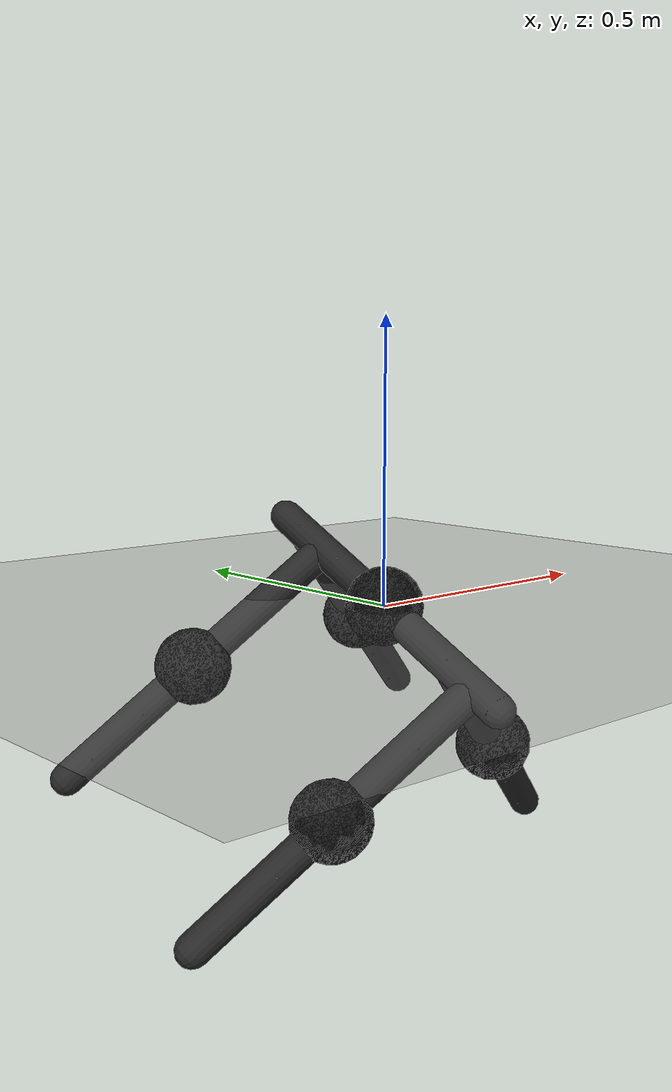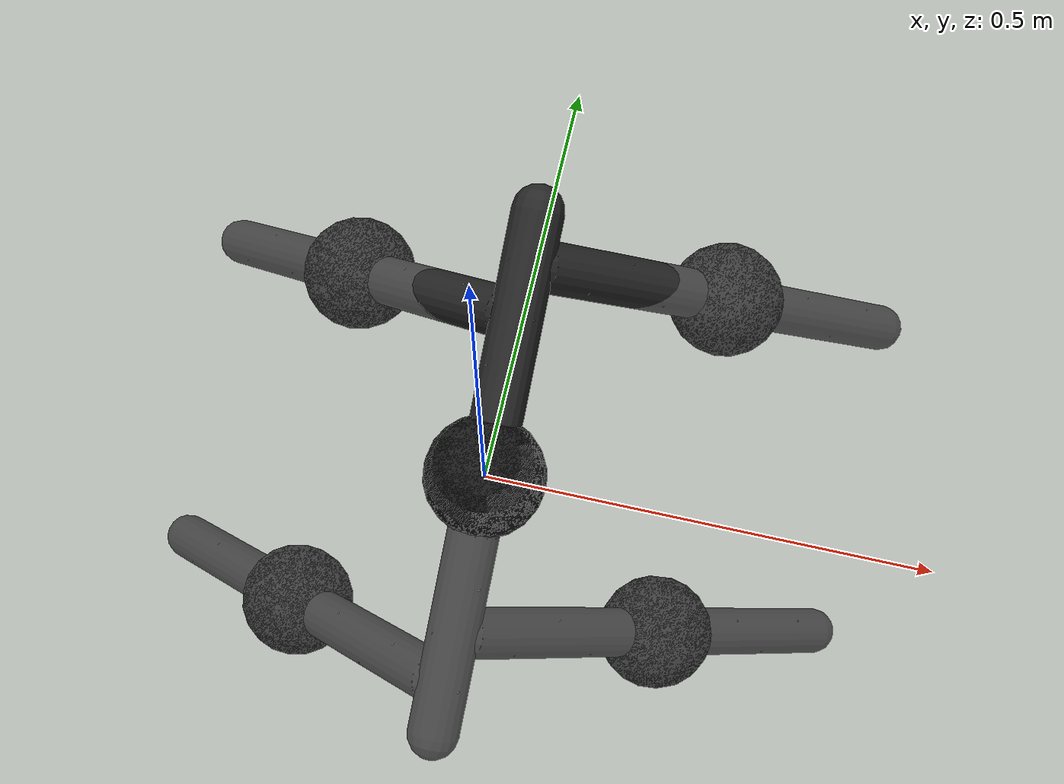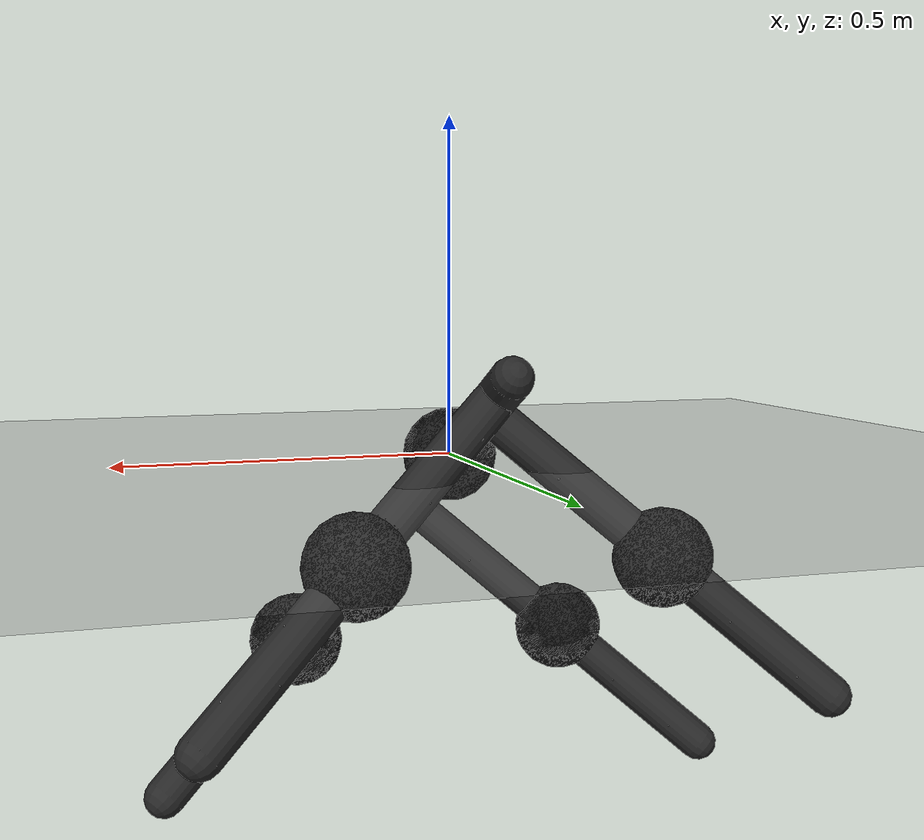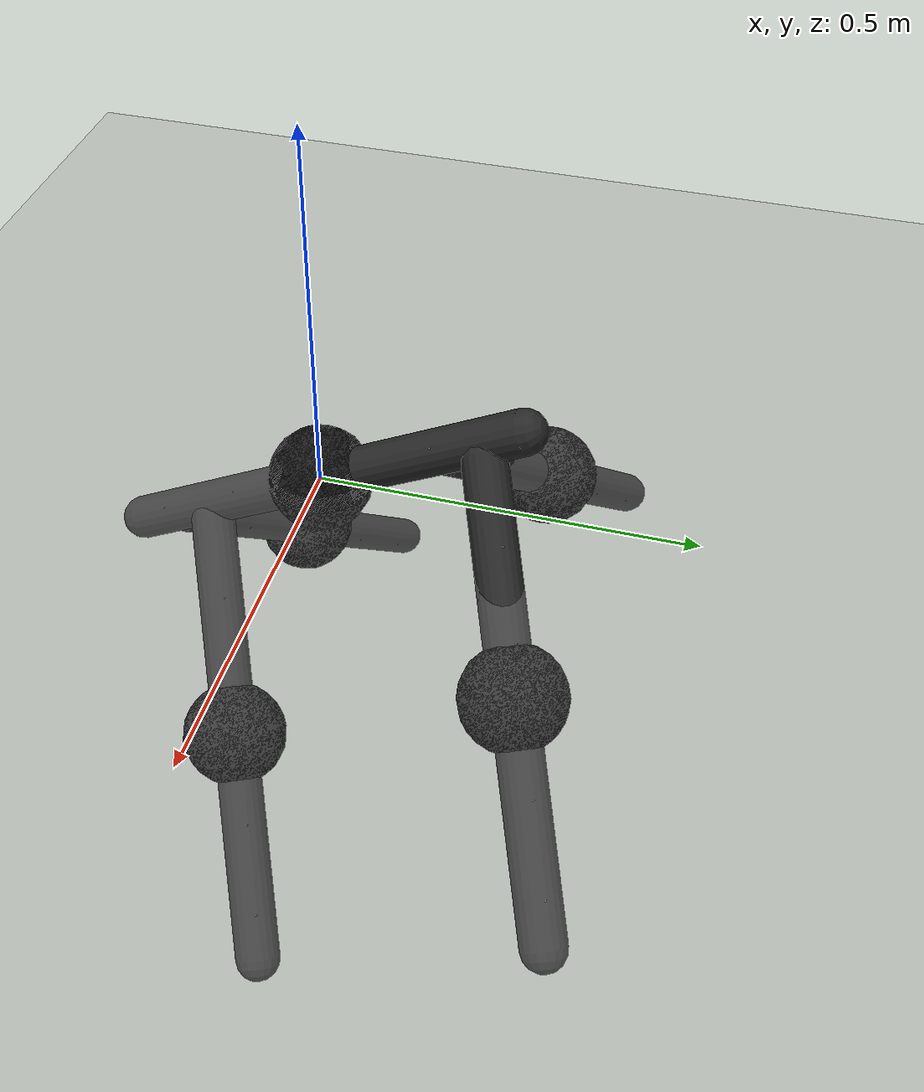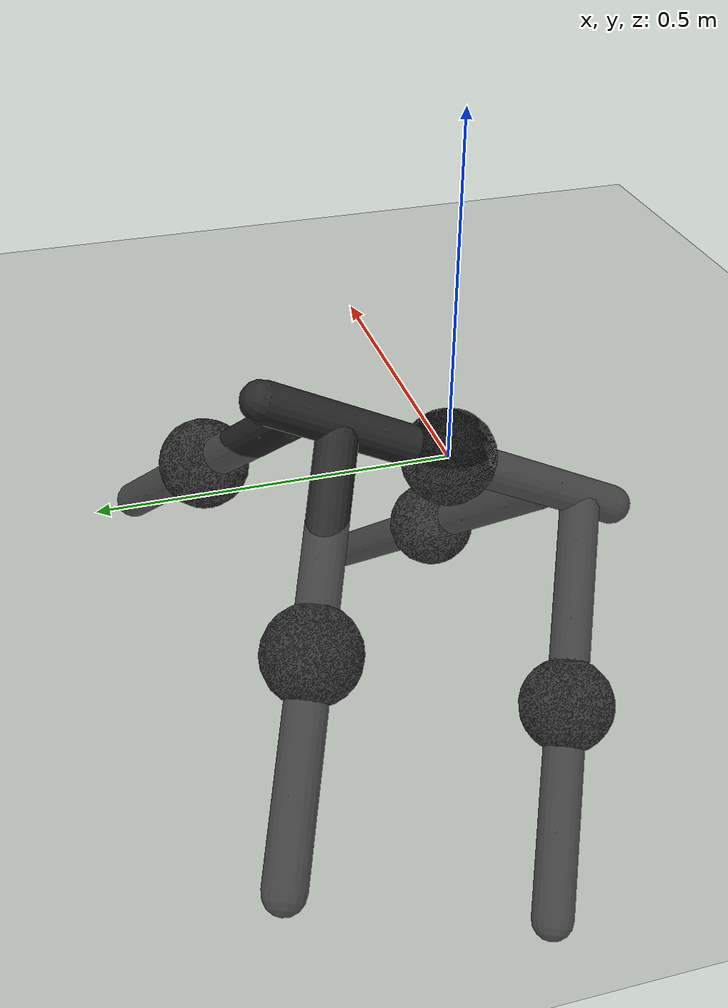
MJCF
<mujoco model="modular_legs">
  <compiler angle="degree" coordinate="local" inertiafromgeom="true"/>
  <option integrator="RK4" timestep="0.004">
    <flag contact="enable" gravity="enable"/>
  </option>
  <size njmax="500" nconmax="100"/>
  <visual>
    <map znear="0.01" shadowclip="0.5"/>
    <headlight ambient="0.6 0.6 0.6" diffuse="0.3 0.3 0.3" specular="0 0 0"/>
    <quality shadowsize="26384"/>
  </visual>
  <default>
    <joint armature="1" damping="1" limited="true"/>
    <geom conaffinity="0" condim="3" density="5.0" friction="1 0.5 0.5" margin="0.01"/>
  </default>
  <asset>
    <material name="matplane" specular="0" shininess="0.01" reflectance="0.1" texture="texplane" texrepeat="1 1" texuniform="true"/>
    <material name="hfield" texture="texplane" texrepeat="1 1" texuniform="true" reflectance="0.1"/>
    <material name="boundary" texture="boundary" texrepeat="1 1" texuniform="true" reflectance=".5" rgba="1 1 1 1"/>
    <material name="metallic" specular="1" shininess="0.8" reflectance="0.9" emission="0.1" rgba="0.2 0.2 0.2 1"/>
    <texture type="skybox" builtin="gradient" rgb1="0.8 0.8 0.8" rgb2="0 0 0" width="512" height="512"/>
    <texture name="texplane" type="2d" builtin="checker" rgb1="0.6 0.6 0.6" rgb2="0.5 0.5 0.5" width="512" height="512" mark="cross" markrgb=".8 .8 .8"/>
    <texture name="boundary" type="2d" builtin="flat" rgb1="0.6 0.6 0.7" rgb2="0.6 0.6 0.8" width="300" height="300"/>
    <texture name="hfield" type="2d" builtin="checker" rgb1="0.4 0.4 0.4" rgb2="0.4 0.4 0.4" width="300" height="300" mark="edge" markrgb="0.2 0.2 0.2"/>
  </asset>
  <worldbody>
    <geom name="floor" pos="0 0 0" size="40 40 40" type="plane" material="matplane" conaffinity="1" condim="6" friction="1.0 .0 .0" priority="1" solref="0.03 2" solimp="0.9 0.95 0.001"/>
    <light mode="targetbodycom" target="torso0" pos="3 0 4" cutoff="100" diffuse="1 1 1" specular=".05 .05 .05"/>
    <body name="torso0" pos="0 0 0">
      <freejoint name="root0"/>
      <camera name="follow_camera0" mode="track" pos="0 -2 1" xyaxes="1 0 0 0 1 2"/>
      <body name="l0" pos="0 0 0" quat="1 0 0 0">
        <geom type="sphere" name="left0" size="0.07" rgba="0.1 0.1 0.1 1" mass="0.1153" friction="1.0 .0 .0" priority="2"/>
        <site name="imu_site0" pos="0 0 0" size="0.01" rgba="0 0 1 1"/>
        <body name="passive0" pos="-2.1178690039592308e-17 0.16298792689260236 0.08126279249668042" quat="0.5082835992042238 0.8213771878206866 -0.22008735415789957 0.13619417993275626">
          <geom name="stick0" type="capsule" pos="0.0 0.0 0.0" quat="1 0 0 0" size="0.03 0.118" rgba="0.15 0.15 0.15 1" mass="0.1734" friction="1.0 .0 .0" priority="2"/>
          <site pos="0.0 0.0 0.1121227766016838" quat="0.0 0.0 0.0 1.0" name="passive0_head_0"/>
          <site pos="0.0 0.0 0.1121227766016838" quat="0.0 0.0 0.8660254037844386 0.5000000000000001" name="passive0_head_1"/>
          <site pos="0.0 0.0 0.1121227766016838" quat="0.0 0.0 0.8660254037844387 -0.4999999999999998" name="passive0_head_2"/>
          <site pos="-0.006470476127563015 0.024148145657226706 0.059" quat="0.9914448613738104 0.13052619222005157 7.992424175358916e-18 6.070848880062641e-17" name="passive0_side_0_0"/>
          <site pos="0.006470476127563007 -0.02414814565722671 0.059" quat="0.9914448613738104 0.13052619222005157 7.992424175358916e-18 6.070848880062641e-17" name="passive0_side_0_1"/>
          <site pos="0.024148145657226706 0.006470476127563018 0.0" quat="0.0 0.0 0.9914448613738104 -0.1305261922200516" name="passive0_side_1_0"/>
          <site pos="-0.024148145657226706 -0.006470476127563019 0.0" quat="0.0 0.0 0.9914448613738104 -0.1305261922200516" name="passive0_side_1_1"/>
          <site pos="-0.006470476127563015 0.024148145657226706 -0.059" quat="0.9914448613738104 0.13052619222005157 7.992424175358916e-18 6.070848880062641e-17" name="passive0_side_2_0"/>
          <site pos="0.006470476127563007 -0.02414814565722671 -0.059" quat="0.9914448613738104 0.13052619222005157 7.992424175358916e-18 6.070848880062641e-17" name="passive0_side_2_1"/>
          <site pos="0.0 0.0 -0.1121227766016838" quat="0.0 0.0 -0.25881904510252074 0.9659258262890683" name="passive0_tail_0"/>
          <site pos="0.0 0.0 -0.1121227766016838" quat="0.0 0.0 0.7071067811865475 0.7071067811865476" name="passive0_tail_1"/>
          <site pos="0.0 0.0 -0.1121227766016838" quat="0.0 0.0 0.9659258262890683 -0.25881904510252063" name="passive0_tail_2"/>
          <body name="passive2" pos="0.035489986101854096 -0.13245043129203274 -0.05899999999999997" quat="0.2705980500730983 0.43045933457687935 -0.5609855267969309 0.6532814824381884">
            <geom name="stick2" type="capsule" pos="0.0 0.0 0.0" quat="1 0 0 0" size="0.03 0.118" rgba="0.15 0.15 0.15 1" mass="0.1734" friction="1.0 .0 .0" priority="2"/>
            <site pos="0.0 0.0 0.1121227766016838" quat="0.0 0.0 0.0 1.0" name="passive2_head_0"/>
            <site pos="0.0 0.0 0.1121227766016838" quat="0.0 0.0 0.8660254037844386 0.5000000000000001" name="passive2_head_1"/>
            <site pos="0.0 0.0 0.1121227766016838" quat="0.0 0.0 0.8660254037844387 -0.4999999999999998" name="passive2_head_2"/>
            <site pos="-0.006470476127563015 0.024148145657226706 0.059" quat="0.9914448613738104 0.13052619222005157 7.992424175358916e-18 6.070848880062641e-17" name="passive2_side_0_0"/>
            <site pos="0.006470476127563007 -0.02414814565722671 0.059" quat="0.9914448613738104 0.13052619222005157 7.992424175358916e-18 6.070848880062641e-17" name="passive2_side_0_1"/>
            <site pos="0.024148145657226706 0.006470476127563018 0.0" quat="0.0 0.0 0.9914448613738104 -0.1305261922200516" name="passive2_side_1_0"/>
            <site pos="-0.024148145657226706 -0.006470476127563019 0.0" quat="0.0 0.0 0.9914448613738104 -0.1305261922200516" name="passive2_side_1_1"/>
            <site pos="-0.006470476127563015 0.024148145657226706 -0.059" quat="0.9914448613738104 0.13052619222005157 7.992424175358916e-18 6.070848880062641e-17" name="passive2_side_2_0"/>
            <site pos="0.006470476127563007 -0.02414814565722671 -0.059" quat="0.9914448613738104 0.13052619222005157 7.992424175358916e-18 6.070848880062641e-17" name="passive2_side_2_1"/>
            <site pos="0.0 0.0 -0.1121227766016838" quat="0.0 0.0 -0.25881904510252074 0.9659258262890683" name="passive2_tail_0"/>
            <site pos="0.0 0.0 -0.1121227766016838" quat="0.0 0.0 0.7071067811865475 0.7071067811865476" name="passive2_tail_1"/>
            <site pos="0.0 0.0 -0.1121227766016838" quat="0.0 0.0 0.9659258262890683 -0.25881904510252063" name="passive2_tail_2"/>
            <body name="l1" pos="6.6303927044841955e-18 1.0541442142396531e-17 0.1821227766016838" quat="0.5082835992042238 -0.8213771878206865 0.2200873541578995 -0.13619417993275618">
              <geom type="sphere" name="left1" size="0.07" rgba="0.1 0.1 0.1 1" mass="0.1153" friction="1.0 .0 .0" priority="2"/>
              <site name="imu_site1" pos="0 0 0" size="0.01" rgba="0 0 1 1"/>
            </body>
            <body name="r1" pos="6.6303927044841955e-18 1.0541442142396531e-17 0.1821227766016838" quat="0.8213771878206865 0.5082835992042238 -0.13619417993275618 -0.2200873541578995">
              <joint axis="0 0 -1" name="joint1" pos="0 0 0" type="hinge" armature="0.05" damping="0.2" limited="auto"/>
              <geom type="sphere" name="right1" size="0.07" rgba="0.15 0.15 0.15 1" mass="0.1623" friction="1.0 .0 .0" priority="2"/>
              <site name="back_imu_site1" pos="0 0 0" size="0.01" rgba="0 0 1 1"/>
              <body name="passive3" pos="-2.1178690039592308e-17 0.16298792689260236 0.08126279249668042" quat="0.5082835992042238 0.8213771878206866 -0.22008735415789957 0.13619417993275626">
                <geom name="stick3" type="capsule" pos="0.0 0.0 0.0" quat="1 0 0 0" size="0.03 0.118" rgba="0.15 0.15 0.15 1" mass="0.1734" friction="1.0 .0 .0" priority="2"/>
                <site pos="0.0 0.0 0.1121227766016838" quat="0.0 0.0 0.0 1.0" name="passive3_head_0"/>
                <site pos="0.0 0.0 0.1121227766016838" quat="0.0 0.0 0.8660254037844386 0.5000000000000001" name="passive3_head_1"/>
                <site pos="0.0 0.0 0.1121227766016838" quat="0.0 0.0 0.8660254037844387 -0.4999999999999998" name="passive3_head_2"/>
                <site pos="-0.006470476127563015 0.024148145657226706 0.059" quat="0.9914448613738104 0.13052619222005157 7.992424175358916e-18 6.070848880062641e-17" name="passive3_side_0_0"/>
                <site pos="0.006470476127563007 -0.02414814565722671 0.059" quat="0.9914448613738104 0.13052619222005157 7.992424175358916e-18 6.070848880062641e-17" name="passive3_side_0_1"/>
                <site pos="0.024148145657226706 0.006470476127563018 0.0" quat="0.0 0.0 0.9914448613738104 -0.1305261922200516" name="passive3_side_1_0"/>
                <site pos="-0.024148145657226706 -0.006470476127563019 0.0" quat="0.0 0.0 0.9914448613738104 -0.1305261922200516" name="passive3_side_1_1"/>
                <site pos="-0.006470476127563015 0.024148145657226706 -0.059" quat="0.9914448613738104 0.13052619222005157 7.992424175358916e-18 6.070848880062641e-17" name="passive3_side_2_0"/>
                <site pos="0.006470476127563007 -0.02414814565722671 -0.059" quat="0.9914448613738104 0.13052619222005157 7.992424175358916e-18 6.070848880062641e-17" name="passive3_side_2_1"/>
                <site pos="0.0 0.0 -0.1121227766016838" quat="0.0 0.0 -0.25881904510252074 0.9659258262890683" name="passive3_tail_0"/>
                <site pos="0.0 0.0 -0.1121227766016838" quat="0.0 0.0 0.7071067811865475 0.7071067811865476" name="passive3_tail_1"/>
                <site pos="0.0 0.0 -0.1121227766016838" quat="0.0 0.0 0.9659258262890683 -0.25881904510252063" name="passive3_tail_2"/>
              </body>
            </body>
          </body>
          <body name="passive4" pos="-0.13245043129203274 -0.035489986101854054 -1.3731079947676574e-17" quat="0.27059805007309834 0.7010573846499779 -0.09229595564125725 -0.6532814824381883">
            <geom name="stick4" type="capsule" pos="0.0 0.0 0.0" quat="1 0 0 0" size="0.03 0.118" rgba="0.15 0.15 0.15 1" mass="0.1734" friction="1.0 .0 .0" priority="2"/>
            <site pos="0.0 0.0 0.1121227766016838" quat="0.0 0.0 0.0 1.0" name="passive4_head_0"/>
            <site pos="0.0 0.0 0.1121227766016838" quat="0.0 0.0 0.8660254037844386 0.5000000000000001" name="passive4_head_1"/>
            <site pos="0.0 0.0 0.1121227766016838" quat="0.0 0.0 0.8660254037844387 -0.4999999999999998" name="passive4_head_2"/>
            <site pos="-0.006470476127563015 0.024148145657226706 0.059" quat="0.9914448613738104 0.13052619222005157 7.992424175358916e-18 6.070848880062641e-17" name="passive4_side_0_0"/>
            <site pos="0.006470476127563007 -0.02414814565722671 0.059" quat="0.9914448613738104 0.13052619222005157 7.992424175358916e-18 6.070848880062641e-17" name="passive4_side_0_1"/>
            <site pos="0.024148145657226706 0.006470476127563018 0.0" quat="0.0 0.0 0.9914448613738104 -0.1305261922200516" name="passive4_side_1_0"/>
            <site pos="-0.024148145657226706 -0.006470476127563019 0.0" quat="0.0 0.0 0.9914448613738104 -0.1305261922200516" name="passive4_side_1_1"/>
            <site pos="-0.006470476127563015 0.024148145657226706 -0.059" quat="0.9914448613738104 0.13052619222005157 7.992424175358916e-18 6.070848880062641e-17" name="passive4_side_2_0"/>
            <site pos="0.006470476127563007 -0.02414814565722671 -0.059" quat="0.9914448613738104 0.13052619222005157 7.992424175358916e-18 6.070848880062641e-17" name="passive4_side_2_1"/>
            <site pos="0.0 0.0 -0.1121227766016838" quat="0.0 0.0 -0.25881904510252074 0.9659258262890683" name="passive4_tail_0"/>
            <site pos="0.0 0.0 -0.1121227766016838" quat="0.0 0.0 0.7071067811865475 0.7071067811865476" name="passive4_tail_1"/>
            <site pos="0.0 0.0 -0.1121227766016838" quat="0.0 0.0 0.9659258262890683 -0.25881904510252063" name="passive4_tail_2"/>
            <body name="l2" pos="6.6303927044841955e-18 1.0541442142396531e-17 0.1821227766016838" quat="0.5082835992042238 -0.8213771878206865 0.2200873541578995 -0.13619417993275618">
              <geom type="sphere" name="left2" size="0.07" rgba="0.1 0.1 0.1 1" mass="0.1153" friction="1.0 .0 .0" priority="2"/>
              <site name="imu_site2" pos="0 0 0" size="0.01" rgba="0 0 1 1"/>
            </body>
            <body name="r2" pos="6.6303927044841955e-18 1.0541442142396531e-17 0.1821227766016838" quat="0.8213771878206865 0.5082835992042238 -0.13619417993275618 -0.2200873541578995">
              <joint axis="0 0 -1" name="joint2" pos="0 0 0" type="hinge" armature="0.05" damping="0.2" limited="auto"/>
              <geom type="sphere" name="right2" size="0.07" rgba="0.15 0.15 0.15 1" mass="0.1623" friction="1.0 .0 .0" priority="2"/>
              <site name="back_imu_site2" pos="0 0 0" size="0.01" rgba="0 0 1 1"/>
              <body name="passive5" pos="-2.1178690039592308e-17 0.16298792689260236 0.08126279249668042" quat="0.5082835992042238 0.8213771878206866 -0.22008735415789957 0.13619417993275626">
                <geom name="stick5" type="capsule" pos="0.0 0.0 0.0" quat="1 0 0 0" size="0.03 0.118" rgba="0.15 0.15 0.15 1" mass="0.1734" friction="1.0 .0 .0" priority="2"/>
                <site pos="0.0 0.0 0.1121227766016838" quat="0.0 0.0 0.0 1.0" name="passive5_head_0"/>
                <site pos="0.0 0.0 0.1121227766016838" quat="0.0 0.0 0.8660254037844386 0.5000000000000001" name="passive5_head_1"/>
                <site pos="0.0 0.0 0.1121227766016838" quat="0.0 0.0 0.8660254037844387 -0.4999999999999998" name="passive5_head_2"/>
                <site pos="-0.006470476127563015 0.024148145657226706 0.059" quat="0.9914448613738104 0.13052619222005157 7.992424175358916e-18 6.070848880062641e-17" name="passive5_side_0_0"/>
                <site pos="0.006470476127563007 -0.02414814565722671 0.059" quat="0.9914448613738104 0.13052619222005157 7.992424175358916e-18 6.070848880062641e-17" name="passive5_side_0_1"/>
                <site pos="0.024148145657226706 0.006470476127563018 0.0" quat="0.0 0.0 0.9914448613738104 -0.1305261922200516" name="passive5_side_1_0"/>
                <site pos="-0.024148145657226706 -0.006470476127563019 0.0" quat="0.0 0.0 0.9914448613738104 -0.1305261922200516" name="passive5_side_1_1"/>
                <site pos="-0.006470476127563015 0.024148145657226706 -0.059" quat="0.9914448613738104 0.13052619222005157 7.992424175358916e-18 6.070848880062641e-17" name="passive5_side_2_0"/>
                <site pos="0.006470476127563007 -0.02414814565722671 -0.059" quat="0.9914448613738104 0.13052619222005157 7.992424175358916e-18 6.070848880062641e-17" name="passive5_side_2_1"/>
                <site pos="0.0 0.0 -0.1121227766016838" quat="0.0 0.0 -0.25881904510252074 0.9659258262890683" name="passive5_tail_0"/>
                <site pos="0.0 0.0 -0.1121227766016838" quat="0.0 0.0 0.7071067811865475 0.7071067811865476" name="passive5_tail_1"/>
                <site pos="0.0 0.0 -0.1121227766016838" quat="0.0 0.0 0.9659258262890683 -0.25881904510252063" name="passive5_tail_2"/>
              </body>
            </body>
          </body>
        </body>
      </body>
      <body name="r0" pos="0 0 0" quat="6.123233995736766e-17 1.0 0.0 0.0">
        <joint axis="0 0 -1" name="joint0" pos="0 0 0" type="hinge" armature="0.05" damping="0.2" limited="auto"/>
        <geom type="sphere" name="right0" size="0.07" rgba="0.15 0.15 0.15 1" mass="0.1623" friction="1.0 .0 .0" priority="2"/>
        <site name="back_imu_site0" pos="0 0 0" size="0.01" rgba="0 0 1 1"/>
        <body name="passive1" pos="-2.1178690039592308e-17 0.16298792689260236 0.08126279249668042" quat="0.5082835992042238 0.8213771878206866 -0.22008735415789957 0.13619417993275626">
          <geom name="stick1" type="capsule" pos="0.0 0.0 0.0" quat="1 0 0 0" size="0.03 0.118" rgba="0.15 0.15 0.15 1" mass="0.1734" friction="1.0 .0 .0" priority="2"/>
          <site pos="0.0 0.0 0.1121227766016838" quat="0.0 0.0 0.0 1.0" name="passive1_head_0"/>
          <site pos="0.0 0.0 0.1121227766016838" quat="0.0 0.0 0.8660254037844386 0.5000000000000001" name="passive1_head_1"/>
          <site pos="0.0 0.0 0.1121227766016838" quat="0.0 0.0 0.8660254037844387 -0.4999999999999998" name="passive1_head_2"/>
          <site pos="-0.006470476127563015 0.024148145657226706 0.059" quat="0.9914448613738104 0.13052619222005157 7.992424175358916e-18 6.070848880062641e-17" name="passive1_side_0_0"/>
          <site pos="0.006470476127563007 -0.02414814565722671 0.059" quat="0.9914448613738104 0.13052619222005157 7.992424175358916e-18 6.070848880062641e-17" name="passive1_side_0_1"/>
          <site pos="0.024148145657226706 0.006470476127563018 0.0" quat="0.0 0.0 0.9914448613738104 -0.1305261922200516" name="passive1_side_1_0"/>
          <site pos="-0.024148145657226706 -0.006470476127563019 0.0" quat="0.0 0.0 0.9914448613738104 -0.1305261922200516" name="passive1_side_1_1"/>
          <site pos="-0.006470476127563015 0.024148145657226706 -0.059" quat="0.9914448613738104 0.13052619222005157 7.992424175358916e-18 6.070848880062641e-17" name="passive1_side_2_0"/>
          <site pos="0.006470476127563007 -0.02414814565722671 -0.059" quat="0.9914448613738104 0.13052619222005157 7.992424175358916e-18 6.070848880062641e-17" name="passive1_side_2_1"/>
          <site pos="0.0 0.0 -0.1121227766016838" quat="0.0 0.0 -0.25881904510252074 0.9659258262890683" name="passive1_tail_0"/>
          <site pos="0.0 0.0 -0.1121227766016838" quat="0.0 0.0 0.7071067811865475 0.7071067811865476" name="passive1_tail_1"/>
          <site pos="0.0 0.0 -0.1121227766016838" quat="0.0 0.0 0.9659258262890683 -0.25881904510252063" name="passive1_tail_2"/>
          <body name="passive6" pos="0.13245043129203274 0.03548998610185407 -1.3731079947676577e-17" quat="0.6532814824381883 0.09229595564125723 0.7010573846499779 0.27059805007309845">
            <geom name="stick6" type="capsule" pos="0.0 0.0 0.0" quat="1 0 0 0" size="0.03 0.118" rgba="0.15 0.15 0.15 1" mass="0.1734" friction="1.0 .0 .0" priority="2"/>
            <site pos="0.0 0.0 0.1121227766016838" quat="0.0 0.0 0.0 1.0" name="passive6_head_0"/>
            <site pos="0.0 0.0 0.1121227766016838" quat="0.0 0.0 0.8660254037844386 0.5000000000000001" name="passive6_head_1"/>
            <site pos="0.0 0.0 0.1121227766016838" quat="0.0 0.0 0.8660254037844387 -0.4999999999999998" name="passive6_head_2"/>
            <site pos="-0.006470476127563015 0.024148145657226706 0.059" quat="0.9914448613738104 0.13052619222005157 7.992424175358916e-18 6.070848880062641e-17" name="passive6_side_0_0"/>
            <site pos="0.006470476127563007 -0.02414814565722671 0.059" quat="0.9914448613738104 0.13052619222005157 7.992424175358916e-18 6.070848880062641e-17" name="passive6_side_0_1"/>
            <site pos="0.024148145657226706 0.006470476127563018 0.0" quat="0.0 0.0 0.9914448613738104 -0.1305261922200516" name="passive6_side_1_0"/>
            <site pos="-0.024148145657226706 -0.006470476127563019 0.0" quat="0.0 0.0 0.9914448613738104 -0.1305261922200516" name="passive6_side_1_1"/>
            <site pos="-0.006470476127563015 0.024148145657226706 -0.059" quat="0.9914448613738104 0.13052619222005157 7.992424175358916e-18 6.070848880062641e-17" name="passive6_side_2_0"/>
            <site pos="0.006470476127563007 -0.02414814565722671 -0.059" quat="0.9914448613738104 0.13052619222005157 7.992424175358916e-18 6.070848880062641e-17" name="passive6_side_2_1"/>
            <site pos="0.0 0.0 -0.1121227766016838" quat="0.0 0.0 -0.25881904510252074 0.9659258262890683" name="passive6_tail_0"/>
            <site pos="0.0 0.0 -0.1121227766016838" quat="0.0 0.0 0.7071067811865475 0.7071067811865476" name="passive6_tail_1"/>
            <site pos="0.0 0.0 -0.1121227766016838" quat="0.0 0.0 0.9659258262890683 -0.25881904510252063" name="passive6_tail_2"/>
            <body name="l3" pos="6.6303927044841955e-18 1.0541442142396531e-17 0.1821227766016838" quat="0.5082835992042238 -0.8213771878206865 0.2200873541578995 -0.13619417993275618">
              <geom type="sphere" name="left3" size="0.07" rgba="0.1 0.1 0.1 1" mass="0.1153" friction="1.0 .0 .0" priority="2"/>
              <site name="imu_site3" pos="0 0 0" size="0.01" rgba="0 0 1 1"/>
            </body>
            <body name="r3" pos="6.6303927044841955e-18 1.0541442142396531e-17 0.1821227766016838" quat="0.8213771878206865 0.5082835992042238 -0.13619417993275618 -0.2200873541578995">
              <joint axis="0 0 -1" name="joint3" pos="0 0 0" type="hinge" armature="0.05" damping="0.2" limited="auto"/>
              <geom type="sphere" name="right3" size="0.07" rgba="0.15 0.15 0.15 1" mass="0.1623" friction="1.0 .0 .0" priority="2"/>
              <site name="back_imu_site3" pos="0 0 0" size="0.01" rgba="0 0 1 1"/>
              <body name="passive7" pos="-2.1178690039592308e-17 0.16298792689260236 0.08126279249668042" quat="0.5082835992042238 0.8213771878206866 -0.22008735415789957 0.13619417993275626">
                <geom name="stick7" type="capsule" pos="0.0 0.0 0.0" quat="1 0 0 0" size="0.03 0.118" rgba="0.15 0.15 0.15 1" mass="0.1734" friction="1.0 .0 .0" priority="2"/>
                <site pos="0.0 0.0 0.1121227766016838" quat="0.0 0.0 0.0 1.0" name="passive7_head_0"/>
                <site pos="0.0 0.0 0.1121227766016838" quat="0.0 0.0 0.8660254037844386 0.5000000000000001" name="passive7_head_1"/>
                <site pos="0.0 0.0 0.1121227766016838" quat="0.0 0.0 0.8660254037844387 -0.4999999999999998" name="passive7_head_2"/>
                <site pos="-0.006470476127563015 0.024148145657226706 0.059" quat="0.9914448613738104 0.13052619222005157 7.992424175358916e-18 6.070848880062641e-17" name="passive7_side_0_0"/>
                <site pos="0.006470476127563007 -0.02414814565722671 0.059" quat="0.9914448613738104 0.13052619222005157 7.992424175358916e-18 6.070848880062641e-17" name="passive7_side_0_1"/>
                <site pos="0.024148145657226706 0.006470476127563018 0.0" quat="0.0 0.0 0.9914448613738104 -0.1305261922200516" name="passive7_side_1_0"/>
                <site pos="-0.024148145657226706 -0.006470476127563019 0.0" quat="0.0 0.0 0.9914448613738104 -0.1305261922200516" name="passive7_side_1_1"/>
                <site pos="-0.006470476127563015 0.024148145657226706 -0.059" quat="0.9914448613738104 0.13052619222005157 7.992424175358916e-18 6.070848880062641e-17" name="passive7_side_2_0"/>
                <site pos="0.006470476127563007 -0.02414814565722671 -0.059" quat="0.9914448613738104 0.13052619222005157 7.992424175358916e-18 6.070848880062641e-17" name="passive7_side_2_1"/>
                <site pos="0.0 0.0 -0.1121227766016838" quat="0.0 0.0 -0.25881904510252074 0.9659258262890683" name="passive7_tail_0"/>
                <site pos="0.0 0.0 -0.1121227766016838" quat="0.0 0.0 0.7071067811865475 0.7071067811865476" name="passive7_tail_1"/>
                <site pos="0.0 0.0 -0.1121227766016838" quat="0.0 0.0 0.9659258262890683 -0.25881904510252063" name="passive7_tail_2"/>
              </body>
            </body>
          </body>
          <body name="passive8" pos="-0.03548998610185409 0.13245043129203274 -0.059" quat="0.6532814824381883 -0.560985526796931 -0.43045933457687946 -0.2705980500730985">
            <geom name="stick8" type="capsule" pos="0.0 0.0 0.0" quat="1 0 0 0" size="0.03 0.118" rgba="0.15 0.15 0.15 1" mass="0.1734" friction="1.0 .0 .0" priority="2"/>
            <site pos="0.0 0.0 0.1121227766016838" quat="0.0 0.0 0.0 1.0" name="passive8_head_0"/>
            <site pos="0.0 0.0 0.1121227766016838" quat="0.0 0.0 0.8660254037844386 0.5000000000000001" name="passive8_head_1"/>
            <site pos="0.0 0.0 0.1121227766016838" quat="0.0 0.0 0.8660254037844387 -0.4999999999999998" name="passive8_head_2"/>
            <site pos="-0.006470476127563015 0.024148145657226706 0.059" quat="0.9914448613738104 0.13052619222005157 7.992424175358916e-18 6.070848880062641e-17" name="passive8_side_0_0"/>
            <site pos="0.006470476127563007 -0.02414814565722671 0.059" quat="0.9914448613738104 0.13052619222005157 7.992424175358916e-18 6.070848880062641e-17" name="passive8_side_0_1"/>
            <site pos="0.024148145657226706 0.006470476127563018 0.0" quat="0.0 0.0 0.9914448613738104 -0.1305261922200516" name="passive8_side_1_0"/>
            <site pos="-0.024148145657226706 -0.006470476127563019 0.0" quat="0.0 0.0 0.9914448613738104 -0.1305261922200516" name="passive8_side_1_1"/>
            <site pos="-0.006470476127563015 0.024148145657226706 -0.059" quat="0.9914448613738104 0.13052619222005157 7.992424175358916e-18 6.070848880062641e-17" name="passive8_side_2_0"/>
            <site pos="0.006470476127563007 -0.02414814565722671 -0.059" quat="0.9914448613738104 0.13052619222005157 7.992424175358916e-18 6.070848880062641e-17" name="passive8_side_2_1"/>
            <site pos="0.0 0.0 -0.1121227766016838" quat="0.0 0.0 -0.25881904510252074 0.9659258262890683" name="passive8_tail_0"/>
            <site pos="0.0 0.0 -0.1121227766016838" quat="0.0 0.0 0.7071067811865475 0.7071067811865476" name="passive8_tail_1"/>
            <site pos="0.0 0.0 -0.1121227766016838" quat="0.0 0.0 0.9659258262890683 -0.25881904510252063" name="passive8_tail_2"/>
            <body name="l4" pos="6.6303927044841955e-18 1.0541442142396531e-17 0.1821227766016838" quat="0.5082835992042238 -0.8213771878206865 0.2200873541578995 -0.13619417993275618">
              <geom type="sphere" name="left4" size="0.07" rgba="0.1 0.1 0.1 1" mass="0.1153" friction="1.0 .0 .0" priority="2"/>
              <site name="imu_site4" pos="0 0 0" size="0.01" rgba="0 0 1 1"/>
            </body>
            <body name="r4" pos="6.6303927044841955e-18 1.0541442142396531e-17 0.1821227766016838" quat="0.8213771878206865 0.5082835992042238 -0.13619417993275618 -0.2200873541578995">
              <joint axis="0 0 -1" name="joint4" pos="0 0 0" type="hinge" armature="0.05" damping="0.2" limited="auto"/>
              <geom type="sphere" name="right4" size="0.07" rgba="0.15 0.15 0.15 1" mass="0.1623" friction="1.0 .0 .0" priority="2"/>
              <site name="back_imu_site4" pos="0 0 0" size="0.01" rgba="0 0 1 1"/>
              <body name="passive9" pos="-2.1178690039592308e-17 0.16298792689260236 0.08126279249668042" quat="0.5082835992042238 0.8213771878206866 -0.22008735415789957 0.13619417993275626">
                <geom name="stick9" type="capsule" pos="0.0 0.0 0.0" quat="1 0 0 0" size="0.03 0.118" rgba="0.15 0.15 0.15 1" mass="0.1734" friction="1.0 .0 .0" priority="2"/>
                <site pos="0.0 0.0 0.1121227766016838" quat="0.0 0.0 0.0 1.0" name="passive9_head_0"/>
                <site pos="0.0 0.0 0.1121227766016838" quat="0.0 0.0 0.8660254037844386 0.5000000000000001" name="passive9_head_1"/>
                <site pos="0.0 0.0 0.1121227766016838" quat="0.0 0.0 0.8660254037844387 -0.4999999999999998" name="passive9_head_2"/>
                <site pos="-0.006470476127563015 0.024148145657226706 0.059" quat="0.9914448613738104 0.13052619222005157 7.992424175358916e-18 6.070848880062641e-17" name="passive9_side_0_0"/>
                <site pos="0.006470476127563007 -0.02414814565722671 0.059" quat="0.9914448613738104 0.13052619222005157 7.992424175358916e-18 6.070848880062641e-17" name="passive9_side_0_1"/>
                <site pos="0.024148145657226706 0.006470476127563018 0.0" quat="0.0 0.0 0.9914448613738104 -0.1305261922200516" name="passive9_side_1_0"/>
                <site pos="-0.024148145657226706 -0.006470476127563019 0.0" quat="0.0 0.0 0.9914448613738104 -0.1305261922200516" name="passive9_side_1_1"/>
                <site pos="-0.006470476127563015 0.024148145657226706 -0.059" quat="0.9914448613738104 0.13052619222005157 7.992424175358916e-18 6.070848880062641e-17" name="passive9_side_2_0"/>
                <site pos="0.006470476127563007 -0.02414814565722671 -0.059" quat="0.9914448613738104 0.13052619222005157 7.992424175358916e-18 6.070848880062641e-17" name="passive9_side_2_1"/>
                <site pos="0.0 0.0 -0.1121227766016838" quat="0.0 0.0 -0.25881904510252074 0.9659258262890683" name="passive9_tail_0"/>
                <site pos="0.0 0.0 -0.1121227766016838" quat="0.0 0.0 0.7071067811865475 0.7071067811865476" name="passive9_tail_1"/>
                <site pos="0.0 0.0 -0.1121227766016838" quat="0.0 0.0 0.9659258262890683 -0.25881904510252063" name="passive9_tail_2"/>
              </body>
            </body>
          </body>
        </body>
      </body>
    </body>
  </worldbody>
  <actuator>
    <motor ctrlrange="-12 12" joint="joint0"/>
    <motor ctrlrange="-12 12" joint="joint1"/>
    <motor ctrlrange="-12 12" joint="joint2"/>
    <motor ctrlrange="-12 12" joint="joint3"/>
    <motor ctrlrange="-12 12" joint="joint4"/>
  </actuator>
  <contact>
    <exclude body1="l0" body2="r0"/>
    <exclude body1="l1" body2="r1"/>
    <exclude body1="l2" body2="r2"/>
    <exclude body1="l3" body2="r3"/>
    <exclude body1="l4" body2="r4"/>
  </contact>
  <sensor>
    <framequat name="imu_quat0" objtype="xbody" objname="l0"/>
    <gyro name="imu_gyro0" site="imu_site0"/>
    <velocimeter name="imu_vel0" site="imu_site0"/>
    <accelerometer name="imu_acc0" site="imu_site0"/>
    <framelinvel name="imu_globvel0" objtype="xbody" objname="l0"/>
    <framequat name="back_imu_quat0" objtype="xbody" objname="r0"/>
    <gyro name="back_imu_gyro0" site="back_imu_site0"/>
    <velocimeter name="back_imu_vel0" site="back_imu_site0"/>
    <framequat name="imu_quat1" objtype="xbody" objname="l1"/>
    <gyro name="imu_gyro1" site="imu_site1"/>
    <velocimeter name="imu_vel1" site="imu_site1"/>
    <accelerometer name="imu_acc1" site="imu_site1"/>
    <framelinvel name="imu_globvel1" objtype="xbody" objname="l1"/>
    <framequat name="back_imu_quat1" objtype="xbody" objname="r1"/>
    <gyro name="back_imu_gyro1" site="back_imu_site1"/>
    <velocimeter name="back_imu_vel1" site="back_imu_site1"/>
    <framequat name="imu_quat2" objtype="xbody" objname="l2"/>
    <gyro name="imu_gyro2" site="imu_site2"/>
    <velocimeter name="imu_vel2" site="imu_site2"/>
    <accelerometer name="imu_acc2" site="imu_site2"/>
    <framelinvel name="imu_globvel2" objtype="xbody" objname="l2"/>
    <framequat name="back_imu_quat2" objtype="xbody" objname="r2"/>
    <gyro name="back_imu_gyro2" site="back_imu_site2"/>
    <velocimeter name="back_imu_vel2" site="back_imu_site2"/>
    <framequat name="imu_quat3" objtype="xbody" objname="l3"/>
    <gyro name="imu_gyro3" site="imu_site3"/>
    <velocimeter name="imu_vel3" site="imu_site3"/>
    <accelerometer name="imu_acc3" site="imu_site3"/>
    <framelinvel name="imu_globvel3" objtype="xbody" objname="l3"/>
    <framequat name="back_imu_quat3" objtype="xbody" objname="r3"/>
    <gyro name="back_imu_gyro3" site="back_imu_site3"/>
    <velocimeter name="back_imu_vel3" site="back_imu_site3"/>
    <framequat name="imu_quat4" objtype="xbody" objname="l4"/>
    <gyro name="imu_gyro4" site="imu_site4"/>
    <velocimeter name="imu_vel4" site="imu_site4"/>
    <accelerometer name="imu_acc4" site="imu_site4"/>
    <framelinvel name="imu_globvel4" objtype="xbody" objname="l4"/>
    <framequat name="back_imu_quat4" objtype="xbody" objname="r4"/>
    <gyro name="back_imu_gyro4" site="back_imu_site4"/>
    <velocimeter name="back_imu_vel4" site="back_imu_site4"/>
  </sensor>
</mujoco>
